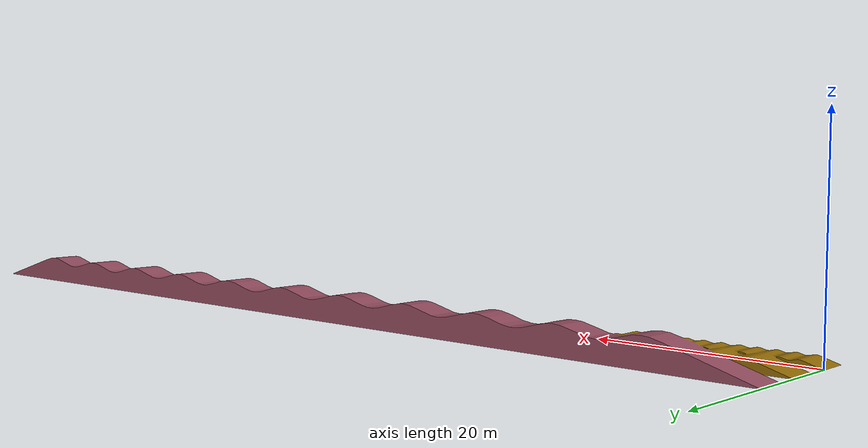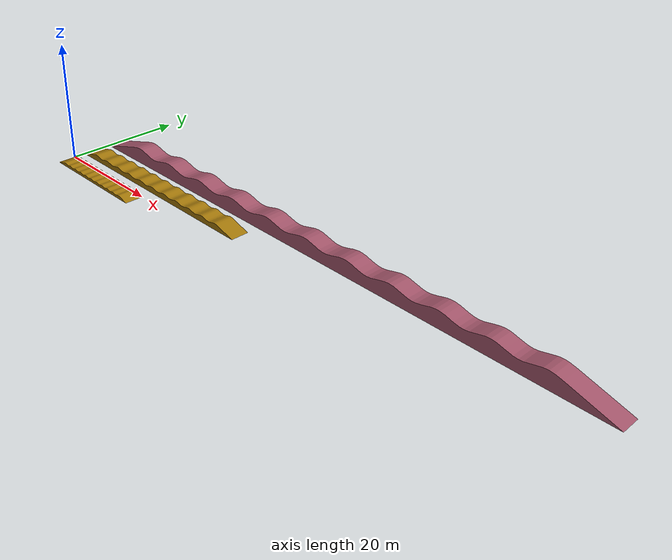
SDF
<?xml version="1.0" ?>
<sdf version="1.5">
  <model name="terrain_test">
    <static>true</static>
    <link name="link">
      <collision name="collision">
        <geometry>
          <mesh>
            <scale>1 1 1</scale>
            <uri>model://terrain_test/meshes/terrain_test.dae</uri>
          </mesh>
        </geometry>
      </collision>

      <visual name="visual">
        <geometry>
          <mesh>
            <scale>1 1 1</scale>
            <uri>model://terrain_test/meshes/terrain_test.dae</uri>
          </mesh>
        </geometry>
      </visual>
    </link>
  </model>
</sdf>
